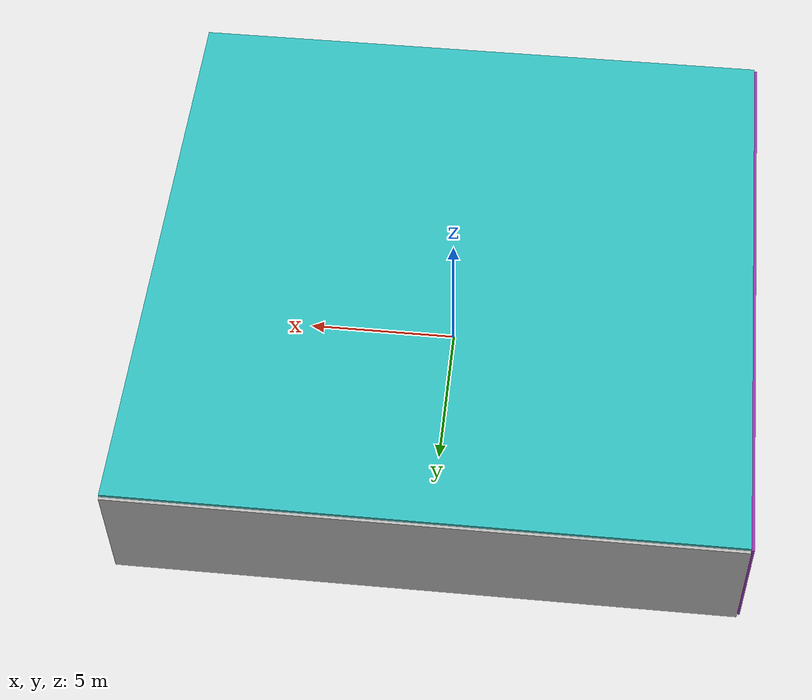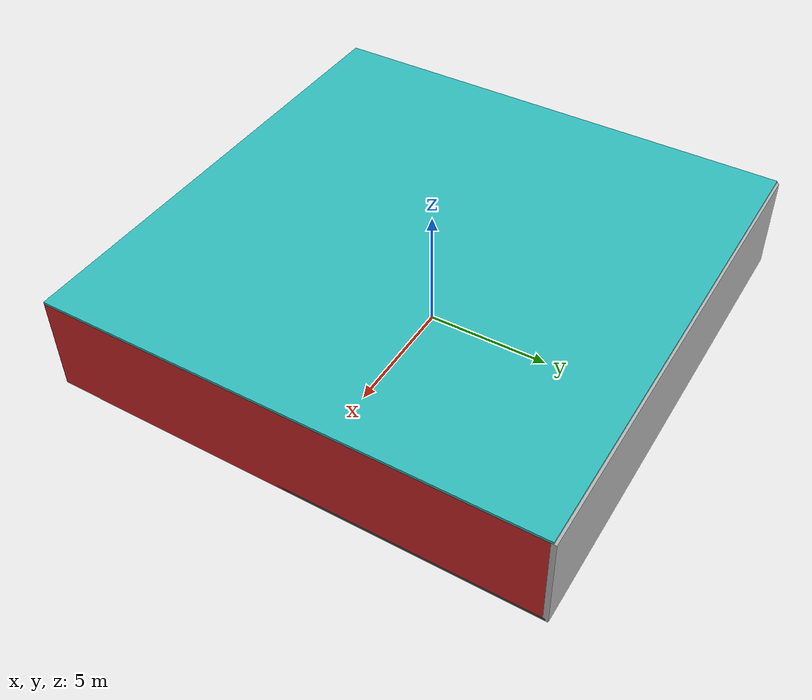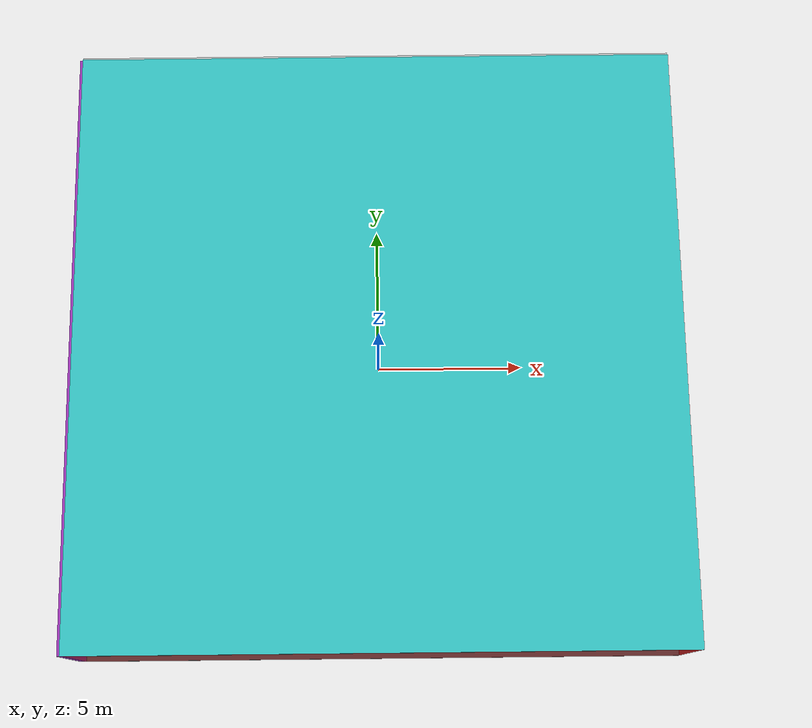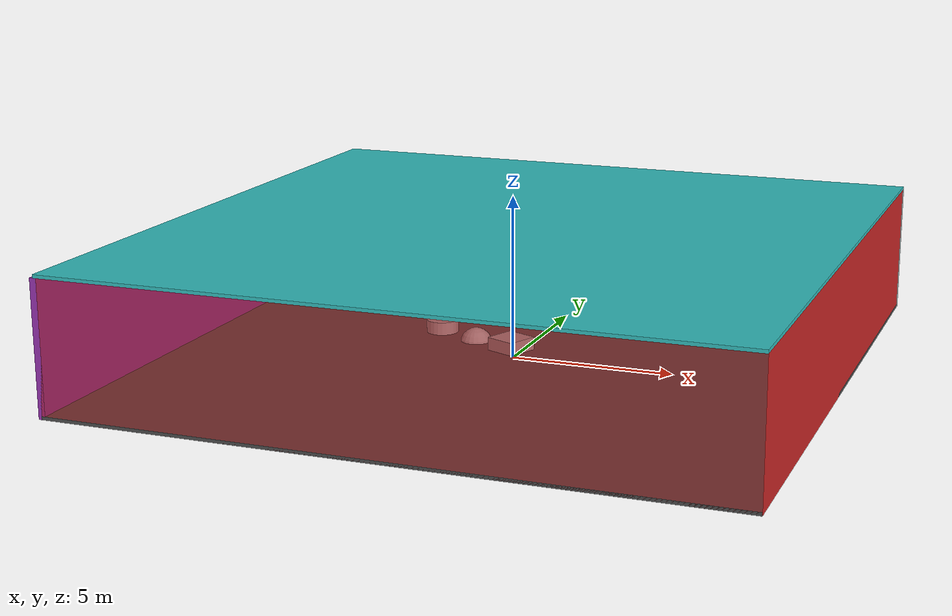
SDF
<sdf version="1.4">
 <world name="default">
  <physics type="ode">
   <max_step_size>0.001</max_step_size>
   <real_time_factor>1</real_time_factor>
   <real_time_update_rate>1000</real_time_update_rate>
   <gravity>0 0 -9.8</gravity>
  </physics>
  <scene><ambient>0.4 0.4 0.4 1</ambient><background>0.7 0.7 0.7 1</background><shadows>1</shadows></scene>
  <model name="Surrounding">
   <static>1</static>
   <link name="Ceiling">
    <collision name="Ceiling_Collision"><geometry><box><size>20 20 0.1</size></box></geometry></collision>
    <visual name="Ceiling_Visual">
     <geometry><box><size>20 20 0.1</size></box></geometry>
     <material>
      <script><uri>file://media/materials/scripts/gazebo.material</uri><name>Gazebo/TurquoiseGlow</name></script>
     </material>
    </visual>
    <pose>0 0 4.05 0 0 0</pose>
   </link>
   <link name="Wall_South">
    <collision name="Wall_South_Collision">
     <geometry><box><size>20 0 4</size></box></geometry>
     <pose>0 0 2 0 -0 0</pose>
    </collision>
    <visual name="Wall_South_Visual">
     <pose>0 0 2 0 -0 0</pose>
     <geometry><box><size>20 0 4</size></box></geometry>
     <material>
      <script><uri>file://media/materials/scripts/gazebo.material</uri><name>Gazebo/RedTransparent</name></script>
     </material>
    </visual>
    <velocity_decay><linear>0</linear><angular>0</angular></velocity_decay>
    <pose>0 -10 0 0 -0 0</pose>
   </link>
   <link name="Wall_East">
    <collision name="Wall_21_Collision">
     <geometry><box><size>20 0 4</size></box></geometry>
     <pose>0 0 2 0 -0 0</pose>
    </collision>
    <visual name="Wall_21_Visual">
     <pose>0 0 2 0 -0 0</pose>
     <geometry><box><size>20 0 4</size></box></geometry>
     <material>
      <script><uri>file://media/materials/scripts/gazebo.material</uri><name>Gazebo/RedGlow</name></script>
     </material>
    </visual>
    <velocity_decay><linear>0</linear><angular>0</angular></velocity_decay>
    <pose>10 0 0 0 -0 1.5708</pose>
   </link>
   <link name="Wall_North">
    <collision name="Wall_22_Collision">
     <geometry><box><size>20 0.2 4</size></box></geometry>
     <pose>0 0 2 0 -0 0</pose>
    </collision>
    <visual name="Wall_22_Visual">
     <pose>0 0 2 0 -0 0</pose>
     <geometry><box><size>20 0.2 4</size></box></geometry>
     <material>
      <script><uri>file://media/materials/scripts/gazebo.material</uri><name>Gazebo/LightOff</name></script>
     </material>
    </visual>
    <velocity_decay><linear>0</linear><angular>0</angular></velocity_decay>
    <pose>0 10 0 0 -0 0</pose>
   </link>
   <link name="Wall_West">
    <collision name="Wall_23_Collision">
     <geometry><box><size>20 0.2 4</size></box></geometry>
     <pose>0 0 2 0 -0 0</pose>
    </collision>
    <visual name="Wall_23_Visual">
     <pose>0 0 2 0 -0 0</pose>
     <geometry><box><size>20 0.2 4</size></box></geometry>
     <material>
      <script><uri>file://media/materials/scripts/gazebo.material</uri><name>Gazebo/PurpleGlow</name></script>
     </material>
    </visual>
    <velocity_decay><linear>0</linear><angular>0</angular></velocity_decay>
    <pose>-10 0 0 0 0 -1.5708</pose>
   </link>
   <link name="Ground_link">
    <collision name="collision">
     <pose>0 0 .05 0 -0 0</pose>
     <geometry><box><size>20 20 0.1</size></box></geometry>
    </collision>
    <visual name="visual">
     <pose>0 0 .05 0 -0 0</pose>
     <geometry><box><size>20 20 0.1</size></box></geometry>
     <material>
      <script><uri>file://media/materials/scripts/gazebo.material</uri><name>Gazebo/DarkGrey</name></script>
     </material>
    </visual>
   </link>
   <static>1</static>
  </model>
  <spherical_coordinates>
   <surface_model>EARTH_WGS84</surface_model>
   <latitude_deg>0</latitude_deg>
   <longitude_deg>0</longitude_deg>
   <elevation>0</elevation>
   <heading_deg>0</heading_deg>
  </spherical_coordinates>
  <light name="lightball_0" type="diffuse">
   <diffuse>0.8 0.8 0.8 1</diffuse>
   <specular>0.2 0.2 0.2 1</specular>
   <attenuation>
    <range>100</range>
    <constant>0.7</constant>
    <linear>0.01</linear>
    <quadratic>0.001</quadratic>
   </attenuation>
   <direction>-0.5 0.1 -0.9</direction>
   <pose>4.26175759354 -6.31659336355 1.69023420363 0 0 0</pose>
  </light>
  <light name="lightball_1" type="diffuse">
   <diffuse>0.8 0.8 0.8 1</diffuse>
   <specular>0.2 0.2 0.2 1</specular>
   <attenuation>
    <range>100</range>
    <constant>0.7</constant>
    <linear>0.01</linear>
    <quadratic>0.001</quadratic>
   </attenuation>
   <direction>-0.5 0.1 -0.9</direction>
   <pose>8.50193098104 4.05847392098 1.25431264139 0 0 0</pose>
  </light>
  <light name="lightball_2" type="diffuse">
   <diffuse>0.8 0.8 0.8 1</diffuse>
   <specular>0.2 0.2 0.2 1</specular>
   <attenuation>
    <range>100</range>
    <constant>0.7</constant>
    <linear>0.01</linear>
    <quadratic>0.001</quadratic>
   </attenuation>
   <direction>-0.5 0.1 -0.9</direction>
   <pose>-9.4592821101 5.12303586281 3.88027851323 0 0 0</pose>
  </light>
  <light name="lightball_3" type="diffuse">
   <diffuse>0.8 0.8 0.8 1</diffuse>
   <specular>0.2 0.2 0.2 1</specular>
   <attenuation>
    <range>100</range>
    <constant>0.7</constant>
    <linear>0.01</linear>
    <quadratic>0.001</quadratic>
   </attenuation>
   <direction>-0.5 0.1 -0.9</direction>
   <pose>-2.63918886377 9.27795832684 3.34879769756 0 0 0</pose>
  </light>
  <light name="lightball_4" type="diffuse">
   <diffuse>0.8 0.8 0.8 1</diffuse>
   <specular>0.2 0.2 0.2 1</specular>
   <attenuation>
    <range>100</range>
    <constant>0.7</constant>
    <linear>0.01</linear>
    <quadratic>0.001</quadratic>
   </attenuation>
   <direction>-0.5 0.1 -0.9</direction>
   <pose>-9.60103037539 7.45162020815 2.29621010228 0 0 0</pose>
  </light>
  <light name="lightball_5" type="diffuse">
   <diffuse>0.8 0.8 0.8 1</diffuse>
   <specular>0.2 0.2 0.2 1</specular>
   <attenuation>
    <range>100</range>
    <constant>0.7</constant>
    <linear>0.01</linear>
    <quadratic>0.001</quadratic>
   </attenuation>
   <direction>-0.5 0.1 -0.9</direction>
   <pose>9.09955106814 -9.25834808328 3.55535992229 0 0 0</pose>
  </light>
  <include>
   <uri>model://textured_shapes</uri>
   <pose>-4.06794472038 6.86000382433 0 0 0 0.219571837313</pose>
  </include>
  <include>
   <uri>model://textured_shapes</uri>
   <pose>-1.62797907374 1.03852803777 0 0 0 1.16382322408</pose>
  </include>
  <include>
   <uri>model://construction_cone</uri>
   <pose>-1.81349220316 4.88341624239 0 0 0 0.178457329713</pose>
  </include>
  <include><uri>model://cabinet</uri><pose>1.43687465398 7.35013513759 0 0 0 1.51824513111</pose></include>
 </world>
</sdf>

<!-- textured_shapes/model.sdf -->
<sdf version="1.6">
  <model name="textured_shapes">
    <pose>0 0 0.5 0 0 0</pose>
    <link name="box">
      <pose>0 -1.5 0 0 0 0</pose>
      <collision name="collision">
        <geometry>
          <box>
            <size>1 1 1</size>
          </box>
        </geometry>
      </collision>
      <visual name="visual">
        <geometry>
          <box>
            <size>1 1 1</size>
          </box>
        </geometry>
        <material>
          <script>
            <uri>model://../model_source/models/textured_shapes/materials/scripts</uri>
            <uri>model://../model_source/models/textured_shapes/materials/textures</uri>
            <name>TexturedShape/Squares</name>
          </script>
        </material>
      </visual>
    </link>
    <link name="sphere">
      <collision name="collision">
        <geometry>
          <sphere>
            <radius>0.5</radius>
          </sphere>
        </geometry>
      </collision>
      <visual name="visual">
        <geometry>
          <sphere>
            <radius>0.5</radius>
          </sphere>
        </geometry>
        <material>
          <script>
            <uri>model://../model_source/models/textured_shapes/materials/scripts</uri>
            <uri>model://../model_source/models/textured_shapes/materials/textures</uri>
            <name>TexturedShape/Squares</name>
          </script>
        </material>
      </visual>
    </link>
    <link name="cylinder">
      <pose>0 1.5 0 0 0 0</pose>
      <collision name="collision">
        <geometry>
          <cylinder>
            <radius>0.5</radius>
            <length>1</length>
          </cylinder>
        </geometry>
      </collision>
      <visual name="visual">
        <geometry>
          <cylinder>
            <radius>0.5</radius>
            <length>1</length>
          </cylinder>
        </geometry>
        <material>
          <script>
            <uri>model://../model_source/models/textured_shapes/materials/scripts</uri>
            <uri>model://../model_source/models/textured_shapes/materials/textures</uri>
            <name>TexturedShape/Squares</name>
          </script>
        </material>
      </visual>
    </link>
  </model>
</sdf>

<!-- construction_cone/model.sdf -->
<sdf version="1.5">
  <model name="Construction Cone">
    <link name="link">
      <collision name="collision">
        <geometry>
          <mesh>
            <scale>10 10 10</scale>
            <uri>file://isr-testbed/construction_cone/meshes/construction_cone.dae</uri>
          </mesh>
        </geometry>
      </collision>
      <visual name="visual">
        <geometry>
          <mesh>
            <scale>10 10 10</scale>
            <uri>file://isr-testbed/construction_cone/meshes/construction_cone.dae</uri>
          </mesh>
        </geometry>
      </visual>
    </link>
  </model>
</sdf>

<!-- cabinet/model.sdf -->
<sdf version="1.5">
  <model name="cabinet">
    <static>true</static>
    <link name="cabinet_bottom_plate">
      <inertial>
        <pose>0 0 -1 0 0 0</pose>
        <inertia>
          <ixx>2.050000</ixx>
          <ixy>0</ixy>
          <ixz>0</ixz>
          <iyy>2.050000</iyy>
          <iyz>0</iyz>
          <izz>2.050000</izz>
        </inertia>
        <mass>25.000000</mass>
      </inertial>
      <collision name="cabinet_bottom_plate_geom">
        <pose>0 0 0.010000 0 0 0</pose>
        <geometry>
          <box>
            <size>0.450000 0.450000 0.020000</size>
          </box>
        </geometry>
      </collision>
      <visual name="cabinet_bottom_plate_geom_visual">
        <pose>0 0 0.010000 0 0 0</pose>
        <geometry>
          <box>
            <size>0.450000 0.450000 0.020000</size>
          </box>
        </geometry>
        <material>
          <script>
            <uri>model://media/materials/scripts/gazebo.material</uri>
            <name>Gazebo/Wood</name>
          </script>
        </material>
      </visual>
      <collision name="cabinet_bottom_plate_geom_cabinet_back_plate">
        <pose>0.235000 0 0.510000 0 0 0</pose>
        <geometry>
          <box>
            <size>0.020000 0.450000 1.020000</size>
          </box>
        </geometry>
      </collision>
      <visual name="cabinet_bottom_plate_geom_cabinet_back_plate_visual">
        <pose>0.235000 0 0.510000 0 0 0</pose>
        <geometry>
          <box>
            <size>0.020000 0.450000 1.020000</size>
          </box>
        </geometry>
        <material>
          <script>
            <uri>model://media/materials/scripts/gazebo.material</uri>
            <name>Gazebo/Wood</name>
          </script>
        </material>
      </visual>
      <collision name="cabinet_bottom_plate_geom_cabinet_left_plate">
        <pose>0 0.235000 0.510000 0 0 0</pose>
        <geometry>
          <box>
            <size>0.450000 0.020000 1.020000</size>
          </box>
        </geometry>
      </collision>
      <visual name="cabinet_bottom_plate_geom_cabinet_left_plate_visual">
        <pose>0 0.235000 0.510000 0 0 0</pose>
        <geometry>
          <box>
            <size>0.450000 0.020000 1.020000</size>
          </box>
        </geometry>
        <material>
          <script>
            <uri>model://media/materials/scripts/gazebo.material</uri>
            <name>Gazebo/Wood</name>
          </script>
        </material>
      </visual>
      <collision name="cabinet_bottom_plate_geom_cabinet_middle_plate">
        <pose>0 0 0.510000 0 0 0</pose>
        <geometry>
          <box>
            <size>0.450000 0.450000 0.020000</size>
          </box>
        </geometry>
      </collision>
      <visual name="cabinet_bottom_plate_geom_cabinet_middle_plate_visual">
        <pose>0 0 0.510000 0 0 0</pose>
        <geometry>
          <box>
            <size>0.450000 0.450000 0.020000</size>
          </box>
        </geometry>
        <material>
          <script>
            <uri>model://media/materials/scripts/gazebo.material</uri>
            <name>Gazebo/Wood</name>
          </script>
        </material>
      </visual>
      <collision name="cabinet_bottom_plate_geom_cabinet_right_plate">
        <pose>0 -0.235000 0.510000 0 0 0</pose>
        <geometry>
          <box>
            <size>0.450000 0.020000 1.020000</size>
          </box>
        </geometry>
      </collision>
      <visual name="cabinet_bottom_plate_geom_cabinet_right_plate_visual">
        <pose>0 -0.235000 0.510000 0 0 0</pose>
        <geometry>
          <box>
            <size>0.450000 0.020000 1.020000</size>
          </box>
        </geometry>
        <material>
          <script>
            <uri>model://media/materials/scripts/gazebo.material</uri>
            <name>Gazebo/Wood</name>
          </script>
        </material>
      </visual>
      <collision name="cabinet_bottom_plate_geom_cabinet_top_plate">
        <pose>0 0 1.010000 0 0 0</pose>
        <geometry>
          <box>
            <size>0.450000 0.450000 0.020000</size>
          </box>
        </geometry>
      </collision>
      <visual name="cabinet_bottom_plate_geom_cabinet_top_plate_visual">
        <pose>0 0 1.010000 0 0 0</pose>
        <geometry>
          <box>
            <size>0.450000 0.450000 0.020000</size>
          </box>
        </geometry>
        <material>
          <script>
            <uri>model://media/materials/scripts/gazebo.material</uri>
            <name>Gazebo/Wood</name>
          </script>
        </material>
      </visual>
    </link>
  </model>
</sdf>
